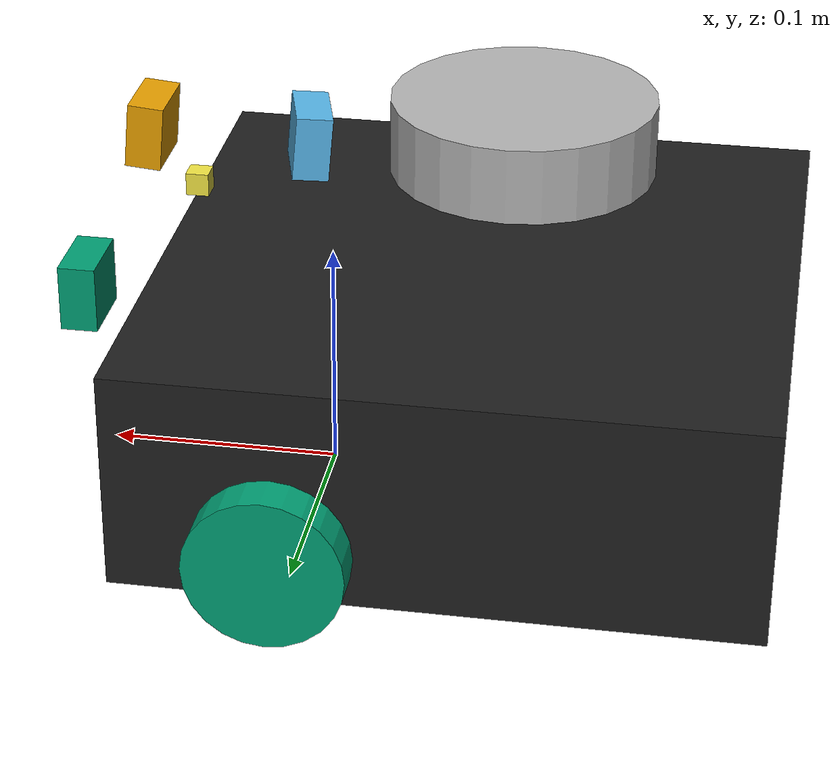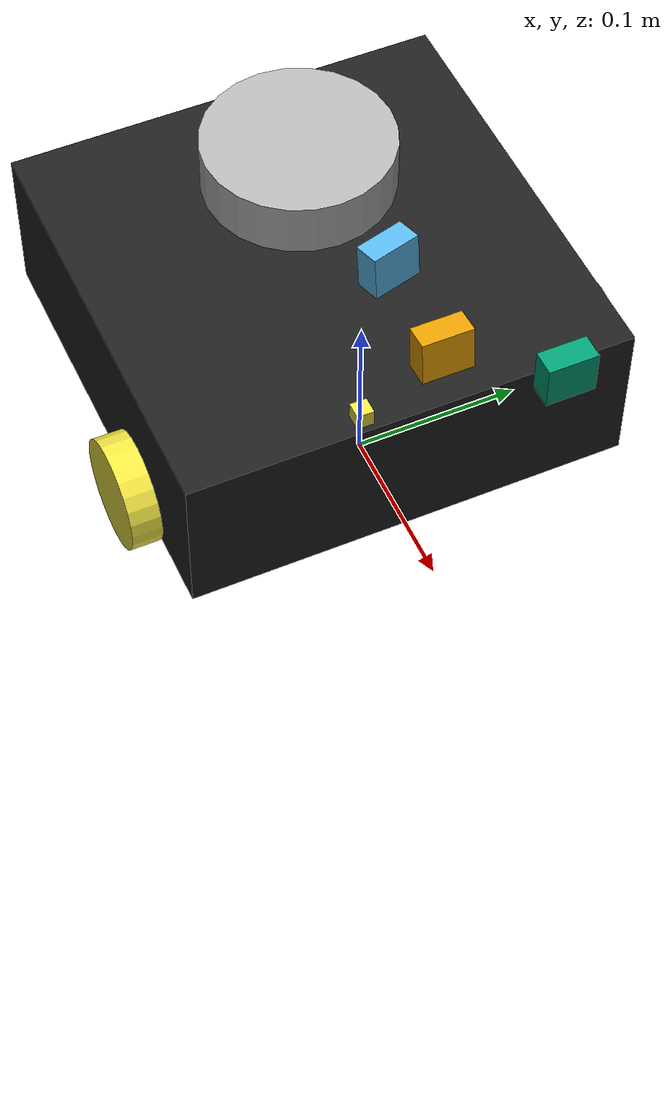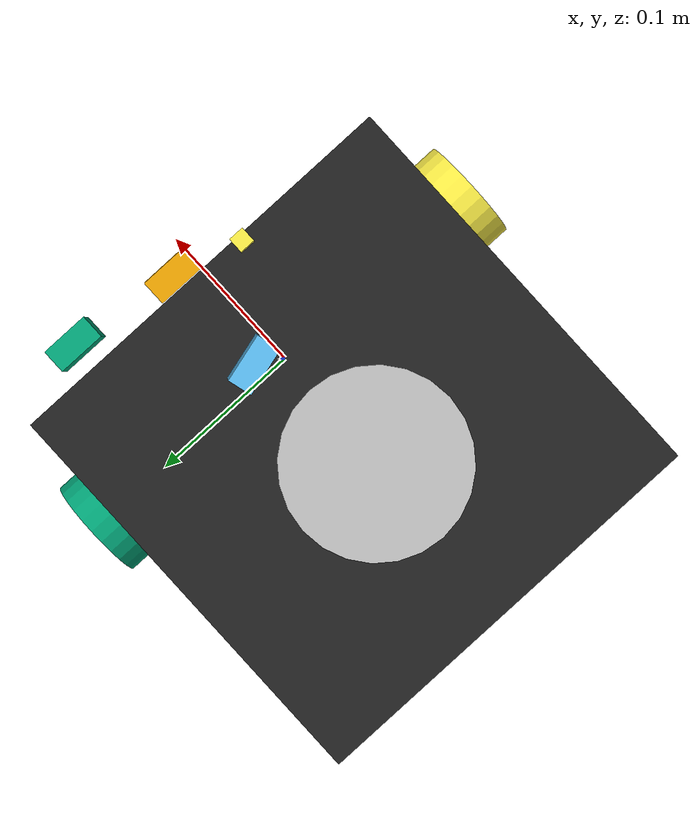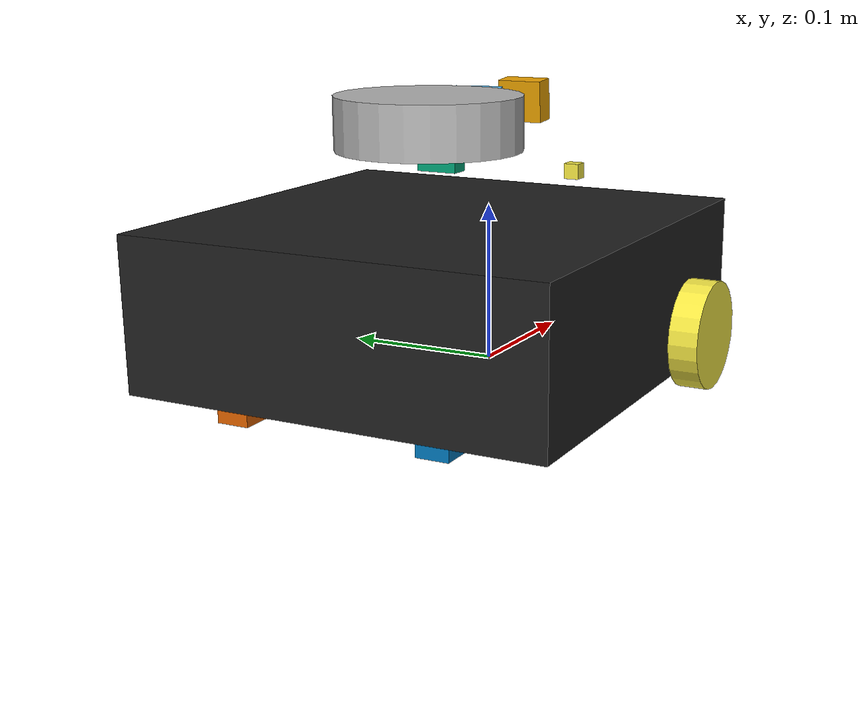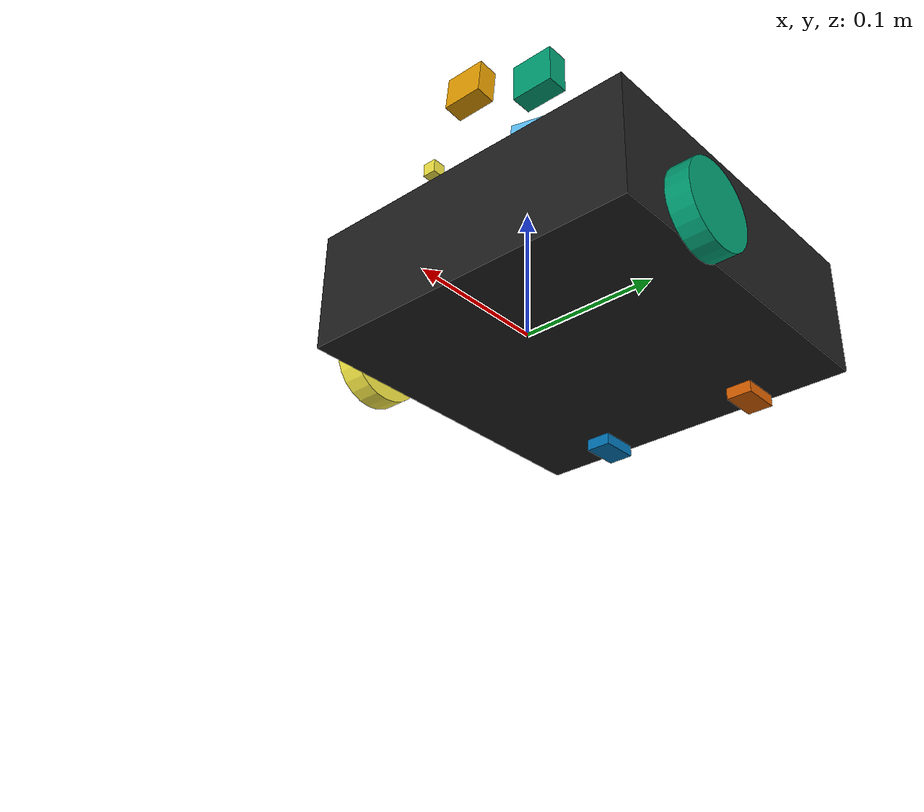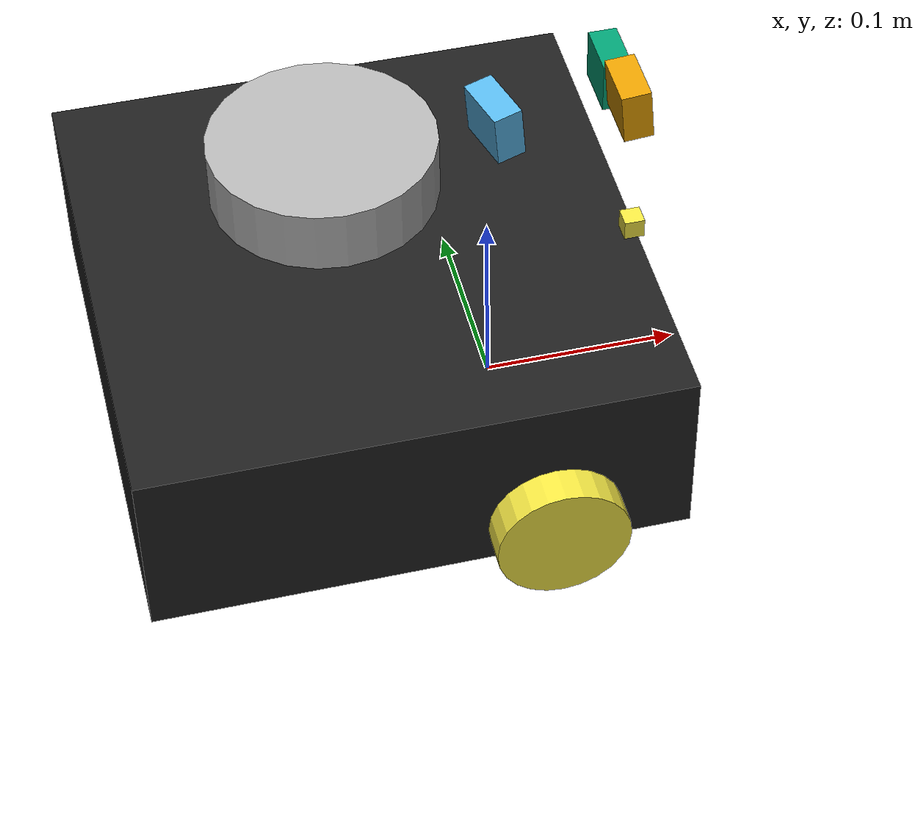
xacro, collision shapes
<?xml version="1.0" ?>
<robot name="turtlebot3_waffle_pi" xmlns:xacro="http://ros.org/wiki/xacro">
  <xacro:include filename="$(find turtlebot3_description)/urdf/common_properties.xacro"/>
  <xacro:include filename="$(find turtlebot3_description)/urdf/turtlebot3_waffle_pi.gazebo.xacro"/>

  <link name="base_footprint"/>

  <joint name="base_joint" type="fixed">
    <parent link="base_footprint"/>
    <child link="base_link" />
    <origin xyz="0 0 0.010" rpy="0 0 0"/>
  </joint>

  <link name="base_link">
    <visual>
      <origin xyz="-0.064 0 0.0" rpy="0 0 0"/>
      <geometry>
        <mesh filename="package://turtlebot3_description/meshes/bases/waffle_pi_base.stl" scale="0.001 0.001 0.001"/>
      </geometry>
      <material name="light_black"/>
    </visual>

    <collision>
      <origin xyz="-0.064 0 0.047" rpy="0 0 0"/>
      <geometry>
        <box size="0.266 0.266 0.094"/>
      </geometry>
    </collision>

    <inertial>
      <origin xyz="0 0 0" rpy="0 0 0"/>
      <mass value="1.3729096e+00"/>
      <inertia ixx="8.7002718e-03" ixy="-4.7576583e-05" ixz="1.1160499e-04"
               iyy="8.6195418e-03" iyz="-3.5422299e-06"
               izz="1.4612727e-02" />
    </inertial>
  </link>

  <joint name="wheel_left_joint" type="continuous">
    <parent link="base_link"/>
    <child link="wheel_left_link"/>
    <origin xyz="0.0 0.144 0.023" rpy="-1.57 0 0"/>
    <axis xyz="0 0 1"/>
  </joint>

  <link name="wheel_left_link">
    <visual>
      <origin xyz="0 0 0" rpy="1.57 0 0"/>
      <geometry>
        <mesh filename="package://turtlebot3_description/meshes/wheels/left_tire.stl" scale="0.001 0.001 0.001"/>
      </geometry>
      <material name="dark"/>
    </visual>

    <collision>
      <origin xyz="0 0 0" rpy="0 0 0"/>
      <geometry>
        <cylinder length="0.018" radius="0.033"/>
      </geometry>
    </collision>

    <inertial>
      <origin xyz="0 0 0" />
      <mass value="2.8498940e-02" />
      <inertia ixx="1.1175580e-05" ixy="-4.2369783e-11" ixz="-5.9381719e-09"
               iyy="1.1192413e-05" iyz="-1.4400107e-11"
               izz="2.0712558e-05" />
      </inertial>
  </link>

  <joint name="wheel_right_joint" type="continuous">
    <parent link="base_link"/>
    <child link="wheel_right_link"/>
    <origin xyz="0.0 -0.144 0.023" rpy="-1.57 0 0"/>
    <axis xyz="0 0 1"/>
  </joint>

  <link name="wheel_right_link">
    <visual>
      <origin xyz="0 0 0" rpy="1.57 0 0"/>
      <geometry>
        <mesh filename="package://turtlebot3_description/meshes/wheels/right_tire.stl" scale="0.001 0.001 0.001"/>
      </geometry>
      <material name="dark"/>
    </visual>

    <collision>
      <origin xyz="0 0 0" rpy="0 0 0"/>
      <geometry>
        <cylinder length="0.018" radius="0.033"/>
      </geometry>
    </collision>

    <inertial>
      <origin xyz="0 0 0" />
      <mass value="2.8498940e-02" />
      <inertia ixx="1.1175580e-05" ixy="-4.2369783e-11" ixz="-5.9381719e-09"
               iyy="1.1192413e-05" iyz="-1.4400107e-11"
               izz="2.0712558e-05" />
      </inertial>
  </link>

  <joint name="caster_back_right_joint" type="fixed">
    <parent link="base_link"/>
    <child link="caster_back_right_link"/>
    <origin xyz="-0.177 -0.064 -0.004" rpy="-1.57 0 0"/>
  </joint>

  <link name="caster_back_right_link">
    <collision>
      <origin xyz="0 0.001 0" rpy="0 0 0"/>
      <geometry>
        <box size="0.030 0.009 0.020"/>
      </geometry>
    </collision>

    <inertial>
      <origin xyz="0 0 0" />
      <mass value="0.005" />
      <inertia ixx="0.001" ixy="0.0" ixz="0.0"
               iyy="0.001" iyz="0.0"
               izz="0.001" />
    </inertial>
  </link>

  <joint name="caster_back_left_joint" type="fixed">
    <parent link="base_link"/>
    <child link="caster_back_left_link"/>
    <origin xyz="-0.177 0.064 -0.004" rpy="-1.57 0 0"/>
  </joint>

  <link name="caster_back_left_link">
    <collision>
      <origin xyz="0 0.001 0" rpy="0 0 0"/>
      <geometry>
        <box size="0.030 0.009 0.020"/>
      </geometry>
    </collision>

    <inertial>
      <origin xyz="0 0 0" />
      <mass value="0.005" />
      <inertia ixx="0.001" ixy="0.0" ixz="0.0"
               iyy="0.001" iyz="0.0"
               izz="0.001" />
    </inertial>
  </link>

  <joint name="imu_joint" type="fixed">
    <parent link="base_link"/>
    <child link="imu_link"/>
    <origin xyz="0.0 -0.03 0.103" rpy="0 0 0"/>
  </joint>

  <link name="imu_link"/>

  <joint name="scan_joint" type="fixed">
    <parent link="base_link"/>
    <child link="base_scan"/>
    <origin xyz="-0.095 -0.002 0.157" rpy="0 0 0"/>
  </joint>

  <link name="base_scan">
    <visual>
      <origin xyz="0 0 0.0" rpy="0 0 0"/>
      <geometry>
        <mesh filename="package://turtlebot3_description/meshes/sensors/lds.stl" scale="0.001 0.001 0.001"/>
      </geometry>
      <material name="dark"/>
    </visual>

    <collision>
      <origin xyz="0.015 0 -0.0065" rpy="0 0 0"/>
      <geometry>
        <cylinder length="0.0315" radius="0.055"/>
      </geometry>
    </collision>

    <inertial>
      <mass value="0.114" />
      <origin xyz="0 0 0" />
      <inertia ixx="0.001" ixy="0.0" ixz="0.0"
               iyy="0.001" iyz="0.0"
               izz="0.001" />
    </inertial>
  </link>

  <joint name="points2_joint" type="fixed">
    <parent link="base_link"/>
    <child link="base_points2"/>
    <origin xyz="0.070 0 0.135" rpy="0 -0.0872 0"/>
  </joint>

  <link name="base_points2">
    <collision>
      <origin xyz="0.005 0.011 0.013" rpy="0 0 0"/>
      <geometry>
        <box size="0.015 0.030 0.027"/>
      </geometry>
    </collision>
  </link>

  <!-- radar nach vorne vorne -->

  <!-- radar nach vorne mitte -->

  <!-- radar linke seite -->

  <!-- radar nach vorne mitte gedreht 10grad links -->

  <!-- radar nach vorne mitte gedreht 15grad links -->
  <joint name="ti_mmwave_joint" type="fixed">
    <parent link="base_link"/>
    <child link="ti_mmwave"/>
    <origin xyz="0.006 0 0.135" rpy="0 -0.0872 0.2618"/>
  </joint>

  <link name="ti_mmwave">
    <collision>
      <origin xyz="0.005 0.011 0.013" rpy="0 0 0"/>
      <geometry>
        <box size="0.015 0.030 0.027"/>
      </geometry>
    </collision>
  </link>

  <joint name="camera_joint" type="fixed">
    <origin xyz="0.08 0.07 0.095" rpy="0 0 0"/>
    <parent link="base_link"/>
    <child link="camera_link"/>
  </joint>

  <link name="camera_link">
    <collision>
      <origin xyz="0.005 0.011 0.013" rpy="0 0 0"/>
      <geometry>
        <box size="0.015 0.030 0.027"/>
      </geometry>
    </collision>
  </link>

  <joint name="fisheye_camera_joint" type="fixed">
    <origin xyz="0.06 -0.035 0.1" rpy="0 0 0"/>
    <parent link="base_link"/>
    <child link="fisheye_camera_link"/>
  </joint>

  <link name="fisheye_camera_link">
    <collision>
      <origin xyz="0.005 0.005 0.005" rpy="0 0 0"/>
      <geometry>
        <box size="0.01 0.01 0.01"/>
      </geometry>
    </collision>
  </link>

  <joint name="fisheye_camera_rviz_image_joint" type="fixed">
    <origin xyz="0.342 0 -0.11" rpy="3.14159 0 -1.5707"/> <!-- x = 0.342 = 608px height / 2 + 38mm abstand-->
    <parent link="fisheye_camera_link"/>
    <child link="fisheye_camera_rviz_image_link"/>
  </joint>

  <link name="fisheye_camera_rviz_image_link">
    <collision>
      <origin xyz="0.1 0.2 0.3" rpy="0 0 0"/>
      <geometry>
        <box size="0 0 0"/>
      </geometry>
    </collision>
  </link>

</robot>
